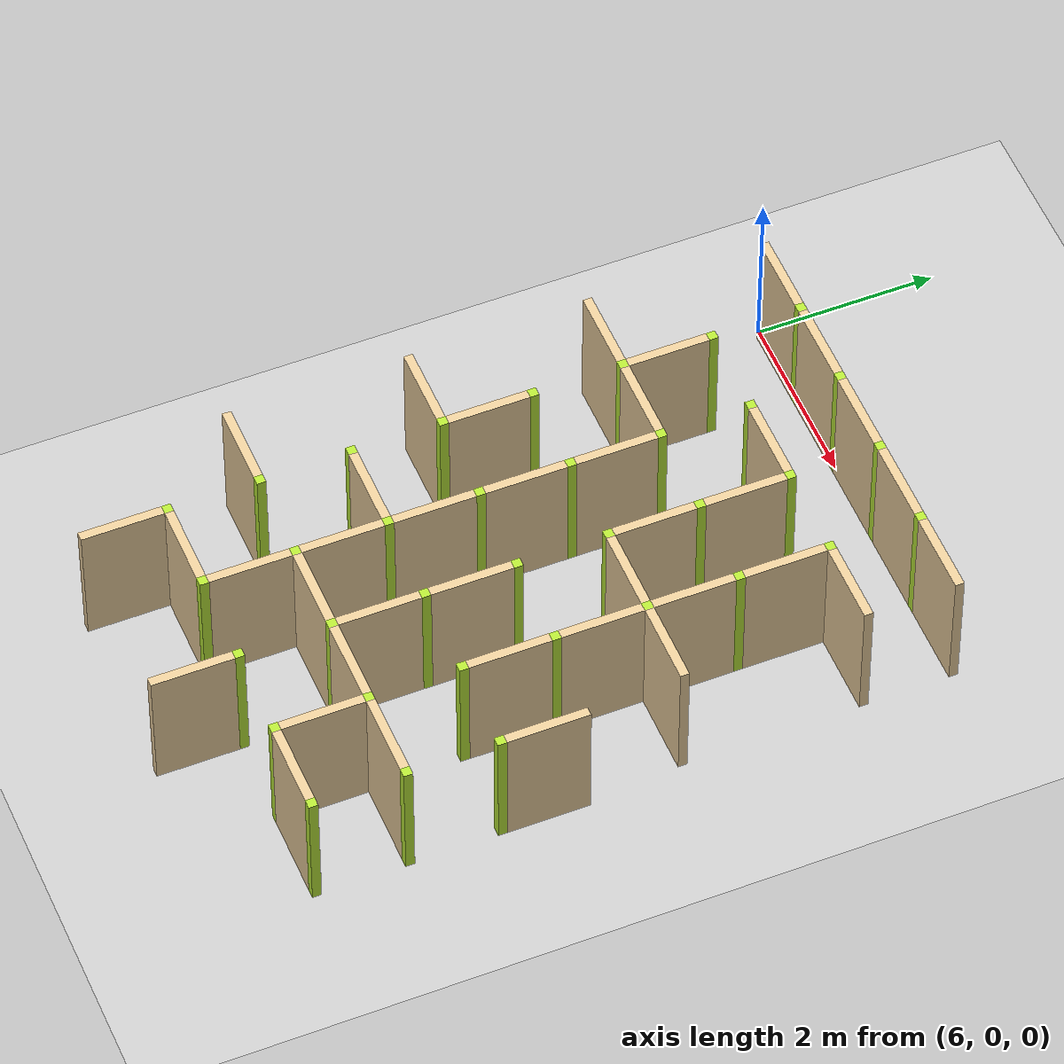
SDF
<sdf version="1.4">
 <world name="maze_world">
  <model name="ground">
   <static>true</static>
   <link name="ground_link">
    <collision name="collision1"><geometry><plane><normal>0 0 1</normal></plane></geometry></collision>
    <visual name="visual1"><geometry><plane><normal>0 0 1</normal><size>100 100</size></plane></geometry></visual>
   </link>
  </model>
  <model name="Untitled">
   <link name="Wall_6_0_h">
    <collision name="Wall_0_Collision">
     <geometry><box><size>0.9 0.1 1.5</size></box></geometry>
     <pose>0 0 0.75 0 -0 0</pose>
    </collision>
    <visual name="Wall_0_Visual">
     <pose>0 0 0.75 0 -0 0</pose>
     <geometry><box><size>0.9 0.1 1.5</size></box></geometry>
     <material>
      <script><uri>file://media/materials/scripts/gazebo.material</uri><name>Gazebo/Grey</name></script>
      <ambient>0.921569 0.807843 0.615686 1</ambient>
     </material>
     <meta><layer>0</layer></meta>
    </visual>
    <pose>6.5 0 0 0 -0 0</pose>
   </link>
   <link name="Wall_7_0_h">
    <collision name="Wall_0_Collision">
     <geometry><box><size>0.9 0.1 1.5</size></box></geometry>
     <pose>0 0 0.75 0 -0 0</pose>
    </collision>
    <visual name="Wall_0_Visual">
     <pose>0 0 0.75 0 -0 0</pose>
     <geometry><box><size>0.9 0.1 1.5</size></box></geometry>
     <material>
      <script><uri>file://media/materials/scripts/gazebo.material</uri><name>Gazebo/Grey</name></script>
      <ambient>0.921569 0.807843 0.615686 1</ambient>
     </material>
     <meta><layer>0</layer></meta>
    </visual>
    <pose>7.5 0 0 0 -0 0</pose>
   </link>
   <link name="Joint_7_0">
    <collision name="Wall_2_Collision">
     <geometry><box><size>0.1 0.1 1.5</size></box></geometry>
     <pose>0 0 0.75 0 -0 0</pose>
    </collision>
    <visual name="Wall_2_Visual">
     <pose>0 0 0.75 0 -0 0</pose>
     <geometry><box><size>0.1 0.1 1.5</size></box></geometry>
     <material>
      <script><uri>file://media/materials/scripts/gazebo.material</uri><name>Gazebo/Grey</name></script>
      <ambient>0.721569 0.907843 0.215686 1</ambient>
     </material>
     <meta><layer>0</layer></meta>
    </visual>
    <pose>7 0 0 0 -0 0</pose>
   </link>
   <link name="Wall_8_0_h">
    <collision name="Wall_0_Collision">
     <geometry><box><size>0.9 0.1 1.5</size></box></geometry>
     <pose>0 0 0.75 0 -0 0</pose>
    </collision>
    <visual name="Wall_0_Visual">
     <pose>0 0 0.75 0 -0 0</pose>
     <geometry><box><size>0.9 0.1 1.5</size></box></geometry>
     <material>
      <script><uri>file://media/materials/scripts/gazebo.material</uri><name>Gazebo/Grey</name></script>
      <ambient>0.921569 0.807843 0.615686 1</ambient>
     </material>
     <meta><layer>0</layer></meta>
    </visual>
    <pose>8.5 0 0 0 -0 0</pose>
   </link>
   <link name="Joint_8_0">
    <collision name="Wall_2_Collision">
     <geometry><box><size>0.1 0.1 1.5</size></box></geometry>
     <pose>0 0 0.75 0 -0 0</pose>
    </collision>
    <visual name="Wall_2_Visual">
     <pose>0 0 0.75 0 -0 0</pose>
     <geometry><box><size>0.1 0.1 1.5</size></box></geometry>
     <material>
      <script><uri>file://media/materials/scripts/gazebo.material</uri><name>Gazebo/Grey</name></script>
      <ambient>0.721569 0.907843 0.215686 1</ambient>
     </material>
     <meta><layer>0</layer></meta>
    </visual>
    <pose>8 0 0 0 -0 0</pose>
   </link>
   <link name="Wall_9_0_h">
    <collision name="Wall_0_Collision">
     <geometry><box><size>0.9 0.1 1.5</size></box></geometry>
     <pose>0 0 0.75 0 -0 0</pose>
    </collision>
    <visual name="Wall_0_Visual">
     <pose>0 0 0.75 0 -0 0</pose>
     <geometry><box><size>0.9 0.1 1.5</size></box></geometry>
     <material>
      <script><uri>file://media/materials/scripts/gazebo.material</uri><name>Gazebo/Grey</name></script>
      <ambient>0.921569 0.807843 0.615686 1</ambient>
     </material>
     <meta><layer>0</layer></meta>
    </visual>
    <pose>9.5 0 0 0 -0 0</pose>
   </link>
   <link name="Joint_9_0">
    <collision name="Wall_2_Collision">
     <geometry><box><size>0.1 0.1 1.5</size></box></geometry>
     <pose>0 0 0.75 0 -0 0</pose>
    </collision>
    <visual name="Wall_2_Visual">
     <pose>0 0 0.75 0 -0 0</pose>
     <geometry><box><size>0.1 0.1 1.5</size></box></geometry>
     <material>
      <script><uri>file://media/materials/scripts/gazebo.material</uri><name>Gazebo/Grey</name></script>
      <ambient>0.721569 0.907843 0.215686 1</ambient>
     </material>
     <meta><layer>0</layer></meta>
    </visual>
    <pose>9 0 0 0 -0 0</pose>
   </link>
   <link name="Wall_10_0_h">
    <collision name="Wall_0_Collision">
     <geometry><box><size>0.9 0.1 1.5</size></box></geometry>
     <pose>0 0 0.75 0 -0 0</pose>
    </collision>
    <visual name="Wall_0_Visual">
     <pose>0 0 0.75 0 -0 0</pose>
     <geometry><box><size>0.9 0.1 1.5</size></box></geometry>
     <material>
      <script><uri>file://media/materials/scripts/gazebo.material</uri><name>Gazebo/Grey</name></script>
      <ambient>0.921569 0.807843 0.615686 1</ambient>
     </material>
     <meta><layer>0</layer></meta>
    </visual>
    <pose>10.5 0 0 0 -0 0</pose>
   </link>
   <link name="Joint_10_0">
    <collision name="Wall_2_Collision">
     <geometry><box><size>0.1 0.1 1.5</size></box></geometry>
     <pose>0 0 0.75 0 -0 0</pose>
    </collision>
    <visual name="Wall_2_Visual">
     <pose>0 0 0.75 0 -0 0</pose>
     <geometry><box><size>0.1 0.1 1.5</size></box></geometry>
     <material>
      <script><uri>file://media/materials/scripts/gazebo.material</uri><name>Gazebo/Grey</name></script>
      <ambient>0.721569 0.907843 0.215686 1</ambient>
     </material>
     <meta><layer>0</layer></meta>
    </visual>
    <pose>10 0 0 0 -0 0</pose>
   </link>
   <link name="Wall_7_1_v">
    <collision name="Wall_0_Collision">
     <geometry><box><size>0.9 0.1 1.5</size></box></geometry>
     <pose>0 0 0.75 0 -0 0</pose>
    </collision>
    <visual name="Wall_0_Visual">
     <pose>0 0 0.75 0 -0 0</pose>
     <geometry><box><size>0.9 0.1 1.5</size></box></geometry>
     <material>
      <script><uri>file://media/materials/scripts/gazebo.material</uri><name>Gazebo/Grey</name></script>
      <ambient>0.921569 0.807843 0.615686 1</ambient>
     </material>
     <meta><layer>0</layer></meta>
    </visual>
    <pose>7 -1.5 0 0 -0 1.5708</pose>
   </link>
   <link name="Joint_7_-1">
    <collision name="Wall_2_Collision">
     <geometry><box><size>0.1 0.1 1.5</size></box></geometry>
     <pose>0 0 0.75 0 -0 0</pose>
    </collision>
    <visual name="Wall_2_Visual">
     <pose>0 0 0.75 0 -0 0</pose>
     <geometry><box><size>0.1 0.1 1.5</size></box></geometry>
     <material>
      <script><uri>file://media/materials/scripts/gazebo.material</uri><name>Gazebo/Grey</name></script>
      <ambient>0.721569 0.907843 0.215686 1</ambient>
     </material>
     <meta><layer>0</layer></meta>
    </visual>
    <pose>7 -1 0 0 -0 0</pose>
   </link>
   <link name="Wall_8_1_h">
    <collision name="Wall_0_Collision">
     <geometry><box><size>0.9 0.1 1.5</size></box></geometry>
     <pose>0 0 0.75 0 -0 0</pose>
    </collision>
    <visual name="Wall_0_Visual">
     <pose>0 0 0.75 0 -0 0</pose>
     <geometry><box><size>0.9 0.1 1.5</size></box></geometry>
     <material>
      <script><uri>file://media/materials/scripts/gazebo.material</uri><name>Gazebo/Grey</name></script>
      <ambient>0.921569 0.807843 0.615686 1</ambient>
     </material>
     <meta><layer>0</layer></meta>
    </visual>
    <pose>8.5 -1 0 0 -0 0</pose>
   </link>
   <link name="Joint_8_-1">
    <collision name="Wall_2_Collision">
     <geometry><box><size>0.1 0.1 1.5</size></box></geometry>
     <pose>0 0 0.75 0 -0 0</pose>
    </collision>
    <visual name="Wall_2_Visual">
     <pose>0 0 0.75 0 -0 0</pose>
     <geometry><box><size>0.1 0.1 1.5</size></box></geometry>
     <material>
      <script><uri>file://media/materials/scripts/gazebo.material</uri><name>Gazebo/Grey</name></script>
      <ambient>0.721569 0.907843 0.215686 1</ambient>
     </material>
     <meta><layer>0</layer></meta>
    </visual>
    <pose>8 -1 0 0 -0 0</pose>
   </link>
   <link name="Wall_9_1_v">
    <collision name="Wall_0_Collision">
     <geometry><box><size>0.9 0.1 1.5</size></box></geometry>
     <pose>0 0 0.75 0 -0 0</pose>
    </collision>
    <visual name="Wall_0_Visual">
     <pose>0 0 0.75 0 -0 0</pose>
     <geometry><box><size>0.9 0.1 1.5</size></box></geometry>
     <material>
      <script><uri>file://media/materials/scripts/gazebo.material</uri><name>Gazebo/Grey</name></script>
      <ambient>0.921569 0.807843 0.615686 1</ambient>
     </material>
     <meta><layer>0</layer></meta>
    </visual>
    <pose>9 -1.5 0 0 -0 1.5708</pose>
   </link>
   <link name="Joint_9_-1">
    <collision name="Wall_2_Collision">
     <geometry><box><size>0.1 0.1 1.5</size></box></geometry>
     <pose>0 0 0.75 0 -0 0</pose>
    </collision>
    <visual name="Wall_2_Visual">
     <pose>0 0 0.75 0 -0 0</pose>
     <geometry><box><size>0.1 0.1 1.5</size></box></geometry>
     <material>
      <script><uri>file://media/materials/scripts/gazebo.material</uri><name>Gazebo/Grey</name></script>
      <ambient>0.721569 0.907843 0.215686 1</ambient>
     </material>
     <meta><layer>0</layer></meta>
    </visual>
    <pose>9 -1 0 0 -0 0</pose>
   </link>
   <link name="Wall_10_1_h">
    <collision name="Wall_0_Collision">
     <geometry><box><size>0.9 0.1 1.5</size></box></geometry>
     <pose>0 0 0.75 0 -0 0</pose>
    </collision>
    <visual name="Wall_0_Visual">
     <pose>0 0 0.75 0 -0 0</pose>
     <geometry><box><size>0.9 0.1 1.5</size></box></geometry>
     <material>
      <script><uri>file://media/materials/scripts/gazebo.material</uri><name>Gazebo/Grey</name></script>
      <ambient>0.921569 0.807843 0.615686 1</ambient>
     </material>
     <meta><layer>0</layer></meta>
    </visual>
    <pose>10.5 -1 0 0 -0 0</pose>
   </link>
   <link name="Wall_10_1_v">
    <collision name="Wall_0_Collision">
     <geometry><box><size>0.9 0.1 1.5</size></box></geometry>
     <pose>0 0 0.75 0 -0 0</pose>
    </collision>
    <visual name="Wall_0_Visual">
     <pose>0 0 0.75 0 -0 0</pose>
     <geometry><box><size>0.9 0.1 1.5</size></box></geometry>
     <material>
      <script><uri>file://media/materials/scripts/gazebo.material</uri><name>Gazebo/Grey</name></script>
      <ambient>0.921569 0.807843 0.615686 1</ambient>
     </material>
     <meta><layer>0</layer></meta>
    </visual>
    <pose>10 -1.5 0 0 -0 1.5708</pose>
   </link>
   <link name="Joint_10_-1">
    <collision name="Wall_2_Collision">
     <geometry><box><size>0.1 0.1 1.5</size></box></geometry>
     <pose>0 0 0.75 0 -0 0</pose>
    </collision>
    <visual name="Wall_2_Visual">
     <pose>0 0 0.75 0 -0 0</pose>
     <geometry><box><size>0.1 0.1 1.5</size></box></geometry>
     <material>
      <script><uri>file://media/materials/scripts/gazebo.material</uri><name>Gazebo/Grey</name></script>
      <ambient>0.721569 0.907843 0.215686 1</ambient>
     </material>
     <meta><layer>0</layer></meta>
    </visual>
    <pose>10 -1 0 0 -0 0</pose>
   </link>
   <link name="Wall_6_2_h">
    <collision name="Wall_0_Collision">
     <geometry><box><size>0.9 0.1 1.5</size></box></geometry>
     <pose>0 0 0.75 0 -0 0</pose>
    </collision>
    <visual name="Wall_0_Visual">
     <pose>0 0 0.75 0 -0 0</pose>
     <geometry><box><size>0.9 0.1 1.5</size></box></geometry>
     <material>
      <script><uri>file://media/materials/scripts/gazebo.material</uri><name>Gazebo/Grey</name></script>
      <ambient>0.921569 0.807843 0.615686 1</ambient>
     </material>
     <meta><layer>0</layer></meta>
    </visual>
    <pose>6.5 -2 0 0 -0 0</pose>
   </link>
   <link name="Wall_7_2_h">
    <collision name="Wall_0_Collision">
     <geometry><box><size>0.9 0.1 1.5</size></box></geometry>
     <pose>0 0 0.75 0 -0 0</pose>
    </collision>
    <visual name="Wall_0_Visual">
     <pose>0 0 0.75 0 -0 0</pose>
     <geometry><box><size>0.9 0.1 1.5</size></box></geometry>
     <material>
      <script><uri>file://media/materials/scripts/gazebo.material</uri><name>Gazebo/Grey</name></script>
      <ambient>0.921569 0.807843 0.615686 1</ambient>
     </material>
     <meta><layer>0</layer></meta>
    </visual>
    <pose>7.5 -2 0 0 -0 0</pose>
   </link>
   <link name="Joint_7_-2">
    <collision name="Wall_2_Collision">
     <geometry><box><size>0.1 0.1 1.5</size></box></geometry>
     <pose>0 0 0.75 0 -0 0</pose>
    </collision>
    <visual name="Wall_2_Visual">
     <pose>0 0 0.75 0 -0 0</pose>
     <geometry><box><size>0.1 0.1 1.5</size></box></geometry>
     <material>
      <script><uri>file://media/materials/scripts/gazebo.material</uri><name>Gazebo/Grey</name></script>
      <ambient>0.721569 0.907843 0.215686 1</ambient>
     </material>
     <meta><layer>0</layer></meta>
    </visual>
    <pose>7 -2 0 0 -0 0</pose>
   </link>
   <link name="Wall_8_2_v">
    <collision name="Wall_0_Collision">
     <geometry><box><size>0.9 0.1 1.5</size></box></geometry>
     <pose>0 0 0.75 0 -0 0</pose>
    </collision>
    <visual name="Wall_0_Visual">
     <pose>0 0 0.75 0 -0 0</pose>
     <geometry><box><size>0.9 0.1 1.5</size></box></geometry>
     <material>
      <script><uri>file://media/materials/scripts/gazebo.material</uri><name>Gazebo/Grey</name></script>
      <ambient>0.921569 0.807843 0.615686 1</ambient>
     </material>
     <meta><layer>0</layer></meta>
    </visual>
    <pose>8 -2.5 0 0 -0 1.5708</pose>
   </link>
   <link name="Joint_8_-2">
    <collision name="Wall_2_Collision">
     <geometry><box><size>0.1 0.1 1.5</size></box></geometry>
     <pose>0 0 0.75 0 -0 0</pose>
    </collision>
    <visual name="Wall_2_Visual">
     <pose>0 0 0.75 0 -0 0</pose>
     <geometry><box><size>0.1 0.1 1.5</size></box></geometry>
     <material>
      <script><uri>file://media/materials/scripts/gazebo.material</uri><name>Gazebo/Grey</name></script>
      <ambient>0.721569 0.907843 0.215686 1</ambient>
     </material>
     <meta><layer>0</layer></meta>
    </visual>
    <pose>8 -2 0 0 -0 0</pose>
   </link>
   <link name="Wall_9_2_v">
    <collision name="Wall_0_Collision">
     <geometry><box><size>0.9 0.1 1.5</size></box></geometry>
     <pose>0 0 0.75 0 -0 0</pose>
    </collision>
    <visual name="Wall_0_Visual">
     <pose>0 0 0.75 0 -0 0</pose>
     <geometry><box><size>0.9 0.1 1.5</size></box></geometry>
     <material>
      <script><uri>file://media/materials/scripts/gazebo.material</uri><name>Gazebo/Grey</name></script>
      <ambient>0.921569 0.807843 0.615686 1</ambient>
     </material>
     <meta><layer>0</layer></meta>
    </visual>
    <pose>9 -2.5 0 0 -0 1.5708</pose>
   </link>
   <link name="Joint_9_-2">
    <collision name="Wall_2_Collision">
     <geometry><box><size>0.1 0.1 1.5</size></box></geometry>
     <pose>0 0 0.75 0 -0 0</pose>
    </collision>
    <visual name="Wall_2_Visual">
     <pose>0 0 0.75 0 -0 0</pose>
     <geometry><box><size>0.1 0.1 1.5</size></box></geometry>
     <material>
      <script><uri>file://media/materials/scripts/gazebo.material</uri><name>Gazebo/Grey</name></script>
      <ambient>0.721569 0.907843 0.215686 1</ambient>
     </material>
     <meta><layer>0</layer></meta>
    </visual>
    <pose>9 -2 0 0 -0 0</pose>
   </link>
   <link name="Wall_10_2_v">
    <collision name="Wall_0_Collision">
     <geometry><box><size>0.9 0.1 1.5</size></box></geometry>
     <pose>0 0 0.75 0 -0 0</pose>
    </collision>
    <visual name="Wall_0_Visual">
     <pose>0 0 0.75 0 -0 0</pose>
     <geometry><box><size>0.9 0.1 1.5</size></box></geometry>
     <material>
      <script><uri>file://media/materials/scripts/gazebo.material</uri><name>Gazebo/Grey</name></script>
      <ambient>0.921569 0.807843 0.615686 1</ambient>
     </material>
     <meta><layer>0</layer></meta>
    </visual>
    <pose>10 -2.5 0 0 -0 1.5708</pose>
   </link>
   <link name="Joint_10_-2">
    <collision name="Wall_2_Collision">
     <geometry><box><size>0.1 0.1 1.5</size></box></geometry>
     <pose>0 0 0.75 0 -0 0</pose>
    </collision>
    <visual name="Wall_2_Visual">
     <pose>0 0 0.75 0 -0 0</pose>
     <geometry><box><size>0.1 0.1 1.5</size></box></geometry>
     <material>
      <script><uri>file://media/materials/scripts/gazebo.material</uri><name>Gazebo/Grey</name></script>
      <ambient>0.721569 0.907843 0.215686 1</ambient>
     </material>
     <meta><layer>0</layer></meta>
    </visual>
    <pose>10 -2 0 0 -0 0</pose>
   </link>
   <link name="Wall_7_3_v">
    <collision name="Wall_0_Collision">
     <geometry><box><size>0.9 0.1 1.5</size></box></geometry>
     <pose>0 0 0.75 0 -0 0</pose>
    </collision>
    <visual name="Wall_0_Visual">
     <pose>0 0 0.75 0 -0 0</pose>
     <geometry><box><size>0.9 0.1 1.5</size></box></geometry>
     <material>
      <script><uri>file://media/materials/scripts/gazebo.material</uri><name>Gazebo/Grey</name></script>
      <ambient>0.921569 0.807843 0.615686 1</ambient>
     </material>
     <meta><layer>0</layer></meta>
    </visual>
    <pose>7 -3.5 0 0 -0 1.5708</pose>
   </link>
   <link name="Joint_7_-3">
    <collision name="Wall_2_Collision">
     <geometry><box><size>0.1 0.1 1.5</size></box></geometry>
     <pose>0 0 0.75 0 -0 0</pose>
    </collision>
    <visual name="Wall_2_Visual">
     <pose>0 0 0.75 0 -0 0</pose>
     <geometry><box><size>0.1 0.1 1.5</size></box></geometry>
     <material>
      <script><uri>file://media/materials/scripts/gazebo.material</uri><name>Gazebo/Grey</name></script>
      <ambient>0.721569 0.907843 0.215686 1</ambient>
     </material>
     <meta><layer>0</layer></meta>
    </visual>
    <pose>7 -3 0 0 -0 0</pose>
   </link>
   <link name="Wall_8_3_v">
    <collision name="Wall_0_Collision">
     <geometry><box><size>0.9 0.1 1.5</size></box></geometry>
     <pose>0 0 0.75 0 -0 0</pose>
    </collision>
    <visual name="Wall_0_Visual">
     <pose>0 0 0.75 0 -0 0</pose>
     <geometry><box><size>0.9 0.1 1.5</size></box></geometry>
     <material>
      <script><uri>file://media/materials/scripts/gazebo.material</uri><name>Gazebo/Grey</name></script>
      <ambient>0.921569 0.807843 0.615686 1</ambient>
     </material>
     <meta><layer>0</layer></meta>
    </visual>
    <pose>8 -3.5 0 0 -0 1.5708</pose>
   </link>
   <link name="Joint_8_-3">
    <collision name="Wall_2_Collision">
     <geometry><box><size>0.1 0.1 1.5</size></box></geometry>
     <pose>0 0 0.75 0 -0 0</pose>
    </collision>
    <visual name="Wall_2_Visual">
     <pose>0 0 0.75 0 -0 0</pose>
     <geometry><box><size>0.1 0.1 1.5</size></box></geometry>
     <material>
      <script><uri>file://media/materials/scripts/gazebo.material</uri><name>Gazebo/Grey</name></script>
      <ambient>0.721569 0.907843 0.215686 1</ambient>
     </material>
     <meta><layer>0</layer></meta>
    </visual>
    <pose>8 -3 0 0 -0 0</pose>
   </link>
   <link name="Wall_9_3_h">
    <collision name="Wall_0_Collision">
     <geometry><box><size>0.9 0.1 1.5</size></box></geometry>
     <pose>0 0 0.75 0 -0 0</pose>
    </collision>
    <visual name="Wall_0_Visual">
     <pose>0 0 0.75 0 -0 0</pose>
     <geometry><box><size>0.9 0.1 1.5</size></box></geometry>
     <material>
      <script><uri>file://media/materials/scripts/gazebo.material</uri><name>Gazebo/Grey</name></script>
      <ambient>0.921569 0.807843 0.615686 1</ambient>
     </material>
     <meta><layer>0</layer></meta>
    </visual>
    <pose>9.5 -3 0 0 -0 0</pose>
   </link>
   <link name="Joint_9_-3">
    <collision name="Wall_2_Collision">
     <geometry><box><size>0.1 0.1 1.5</size></box></geometry>
     <pose>0 0 0.75 0 -0 0</pose>
    </collision>
    <visual name="Wall_2_Visual">
     <pose>0 0 0.75 0 -0 0</pose>
     <geometry><box><size>0.1 0.1 1.5</size></box></geometry>
     <material>
      <script><uri>file://media/materials/scripts/gazebo.material</uri><name>Gazebo/Grey</name></script>
      <ambient>0.721569 0.907843 0.215686 1</ambient>
     </material>
     <meta><layer>0</layer></meta>
    </visual>
    <pose>9 -3 0 0 -0 0</pose>
   </link>
   <link name="Wall_10_3_h">
    <collision name="Wall_0_Collision">
     <geometry><box><size>0.9 0.1 1.5</size></box></geometry>
     <pose>0 0 0.75 0 -0 0</pose>
    </collision>
    <visual name="Wall_0_Visual">
     <pose>0 0 0.75 0 -0 0</pose>
     <geometry><box><size>0.9 0.1 1.5</size></box></geometry>
     <material>
      <script><uri>file://media/materials/scripts/gazebo.material</uri><name>Gazebo/Grey</name></script>
      <ambient>0.921569 0.807843 0.615686 1</ambient>
     </material>
     <meta><layer>0</layer></meta>
    </visual>
    <pose>10.5 -3 0 0 -0 0</pose>
   </link>
   <link name="Wall_10_3_v">
    <collision name="Wall_0_Collision">
     <geometry><box><size>0.9 0.1 1.5</size></box></geometry>
     <pose>0 0 0.75 0 -0 0</pose>
    </collision>
    <visual name="Wall_0_Visual">
     <pose>0 0 0.75 0 -0 0</pose>
     <geometry><box><size>0.9 0.1 1.5</size></box></geometry>
     <material>
      <script><uri>file://media/materials/scripts/gazebo.material</uri><name>Gazebo/Grey</name></script>
      <ambient>0.921569 0.807843 0.615686 1</ambient>
     </material>
     <meta><layer>0</layer></meta>
    </visual>
    <pose>10 -3.5 0 0 -0 1.5708</pose>
   </link>
   <link name="Joint_10_-3">
    <collision name="Wall_2_Collision">
     <geometry><box><size>0.1 0.1 1.5</size></box></geometry>
     <pose>0 0 0.75 0 -0 0</pose>
    </collision>
    <visual name="Wall_2_Visual">
     <pose>0 0 0.75 0 -0 0</pose>
     <geometry><box><size>0.1 0.1 1.5</size></box></geometry>
     <material>
      <script><uri>file://media/materials/scripts/gazebo.material</uri><name>Gazebo/Grey</name></script>
      <ambient>0.721569 0.907843 0.215686 1</ambient>
     </material>
     <meta><layer>0</layer></meta>
    </visual>
    <pose>10 -3 0 0 -0 0</pose>
   </link>
   <link name="Wall_6_4_h">
    <collision name="Wall_0_Collision">
     <geometry><box><size>0.9 0.1 1.5</size></box></geometry>
     <pose>0 0 0.75 0 -0 0</pose>
    </collision>
    <visual name="Wall_0_Visual">
     <pose>0 0 0.75 0 -0 0</pose>
     <geometry><box><size>0.9 0.1 1.5</size></box></geometry>
     <material>
      <script><uri>file://media/materials/scripts/gazebo.material</uri><name>Gazebo/Grey</name></script>
      <ambient>0.921569 0.807843 0.615686 1</ambient>
     </material>
     <meta><layer>0</layer></meta>
    </visual>
    <pose>6.5 -4 0 0 -0 0</pose>
   </link>
   <link name="Joint_7_-4">
    <collision name="Wall_2_Collision">
     <geometry><box><size>0.1 0.1 1.5</size></box></geometry>
     <pose>0 0 0.75 0 -0 0</pose>
    </collision>
    <visual name="Wall_2_Visual">
     <pose>0 0 0.75 0 -0 0</pose>
     <geometry><box><size>0.1 0.1 1.5</size></box></geometry>
     <material>
      <script><uri>file://media/materials/scripts/gazebo.material</uri><name>Gazebo/Grey</name></script>
      <ambient>0.721569 0.907843 0.215686 1</ambient>
     </material>
     <meta><layer>0</layer></meta>
    </visual>
    <pose>7 -4 0 0 -0 0</pose>
   </link>
   <link name="Wall_8_4_v">
    <collision name="Wall_0_Collision">
     <geometry><box><size>0.9 0.1 1.5</size></box></geometry>
     <pose>0 0 0.75 0 -0 0</pose>
    </collision>
    <visual name="Wall_0_Visual">
     <pose>0 0 0.75 0 -0 0</pose>
     <geometry><box><size>0.9 0.1 1.5</size></box></geometry>
     <material>
      <script><uri>file://media/materials/scripts/gazebo.material</uri><name>Gazebo/Grey</name></script>
      <ambient>0.921569 0.807843 0.615686 1</ambient>
     </material>
     <meta><layer>0</layer></meta>
    </visual>
    <pose>8 -4.5 0 0 -0 1.5708</pose>
   </link>
   <link name="Joint_8_-4">
    <collision name="Wall_2_Collision">
     <geometry><box><size>0.1 0.1 1.5</size></box></geometry>
     <pose>0 0 0.75 0 -0 0</pose>
    </collision>
    <visual name="Wall_2_Visual">
     <pose>0 0 0.75 0 -0 0</pose>
     <geometry><box><size>0.1 0.1 1.5</size></box></geometry>
     <material>
      <script><uri>file://media/materials/scripts/gazebo.material</uri><name>Gazebo/Grey</name></script>
      <ambient>0.721569 0.907843 0.215686 1</ambient>
     </material>
     <meta><layer>0</layer></meta>
    </visual>
    <pose>8 -4 0 0 -0 0</pose>
   </link>
   <link name="Wall_9_4_v">
    <collision name="Wall_0_Collision">
     <geometry><box><size>0.9 0.1 1.5</size></box></geometry>
     <pose>0 0 0.75 0 -0 0</pose>
    </collision>
    <visual name="Wall_0_Visual">
     <pose>0 0 0.75 0 -0 0</pose>
     <geometry><box><size>0.9 0.1 1.5</size></box></geometry>
     <material>
      <script><uri>file://media/materials/scripts/gazebo.material</uri><name>Gazebo/Grey</name></script>
      <ambient>0.921569 0.807843 0.615686 1</ambient>
     </material>
     <meta><layer>0</layer></meta>
    </visual>
    <pose>9 -4.5 0 0 -0 1.5708</pose>
   </link>
   <link name="Joint_9_-4">
    <collision name="Wall_2_Collision">
     <geometry><box><size>0.1 0.1 1.5</size></box></geometry>
     <pose>0 0 0.75 0 -0 0</pose>
    </collision>
    <visual name="Wall_2_Visual">
     <pose>0 0 0.75 0 -0 0</pose>
     <geometry><box><size>0.1 0.1 1.5</size></box></geometry>
     <material>
      <script><uri>file://media/materials/scripts/gazebo.material</uri><name>Gazebo/Grey</name></script>
      <ambient>0.721569 0.907843 0.215686 1</ambient>
     </material>
     <meta><layer>0</layer></meta>
    </visual>
    <pose>9 -4 0 0 -0 0</pose>
   </link>
   <link name="Wall_10_4_v">
    <collision name="Wall_0_Collision">
     <geometry><box><size>0.9 0.1 1.5</size></box></geometry>
     <pose>0 0 0.75 0 -0 0</pose>
    </collision>
    <visual name="Wall_0_Visual">
     <pose>0 0 0.75 0 -0 0</pose>
     <geometry><box><size>0.9 0.1 1.5</size></box></geometry>
     <material>
      <script><uri>file://media/materials/scripts/gazebo.material</uri><name>Gazebo/Grey</name></script>
      <ambient>0.921569 0.807843 0.615686 1</ambient>
     </material>
     <meta><layer>0</layer></meta>
    </visual>
    <pose>10 -4.5 0 0 -0 1.5708</pose>
   </link>
   <link name="Joint_10_-4">
    <collision name="Wall_2_Collision">
     <geometry><box><size>0.1 0.1 1.5</size></box></geometry>
     <pose>0 0 0.75 0 -0 0</pose>
    </collision>
    <visual name="Wall_2_Visual">
     <pose>0 0 0.75 0 -0 0</pose>
     <geometry><box><size>0.1 0.1 1.5</size></box></geometry>
     <material>
      <script><uri>file://media/materials/scripts/gazebo.material</uri><name>Gazebo/Grey</name></script>
      <ambient>0.721569 0.907843 0.215686 1</ambient>
     </material>
     <meta><layer>0</layer></meta>
    </visual>
    <pose>10 -4 0 0 -0 0</pose>
   </link>
   <link name="Wall_11_4_v">
    <collision name="Wall_0_Collision">
     <geometry><box><size>0.9 0.1 1.5</size></box></geometry>
     <pose>0 0 0.75 0 -0 0</pose>
    </collision>
    <visual name="Wall_0_Visual">
     <pose>0 0 0.75 0 -0 0</pose>
     <geometry><box><size>0.9 0.1 1.5</size></box></geometry>
     <material>
      <script><uri>file://media/materials/scripts/gazebo.material</uri><name>Gazebo/Grey</name></script>
      <ambient>0.921569 0.807843 0.615686 1</ambient>
     </material>
     <meta><layer>0</layer></meta>
    </visual>
    <pose>11 -4.5 0 0 -0 1.5708</pose>
   </link>
   <link name="Wall_7_5_h">
    <collision name="Wall_0_Collision">
     <geometry><box><size>0.9 0.1 1.5</size></box></geometry>
     <pose>0 0 0.75 0 -0 0</pose>
    </collision>
    <visual name="Wall_0_Visual">
     <pose>0 0 0.75 0 -0 0</pose>
     <geometry><box><size>0.9 0.1 1.5</size></box></geometry>
     <material>
      <script><uri>file://media/materials/scripts/gazebo.material</uri><name>Gazebo/Grey</name></script>
      <ambient>0.921569 0.807843 0.615686 1</ambient>
     </material>
     <meta><layer>0</layer></meta>
    </visual>
    <pose>7.5 -5 0 0 -0 0</pose>
   </link>
   <link name="Joint_7_-5">
    <collision name="Wall_2_Collision">
     <geometry><box><size>0.1 0.1 1.5</size></box></geometry>
     <pose>0 0 0.75 0 -0 0</pose>
    </collision>
    <visual name="Wall_2_Visual">
     <pose>0 0 0.75 0 -0 0</pose>
     <geometry><box><size>0.1 0.1 1.5</size></box></geometry>
     <material>
      <script><uri>file://media/materials/scripts/gazebo.material</uri><name>Gazebo/Grey</name></script>
      <ambient>0.721569 0.907843 0.215686 1</ambient>
     </material>
     <meta><layer>0</layer></meta>
    </visual>
    <pose>7 -5 0 0 -0 0</pose>
   </link>
   <link name="Wall_8_5_v">
    <collision name="Wall_0_Collision">
     <geometry><box><size>0.9 0.1 1.5</size></box></geometry>
     <pose>0 0 0.75 0 -0 0</pose>
    </collision>
    <visual name="Wall_0_Visual">
     <pose>0 0 0.75 0 -0 0</pose>
     <geometry><box><size>0.9 0.1 1.5</size></box></geometry>
     <material>
      <script><uri>file://media/materials/scripts/gazebo.material</uri><name>Gazebo/Grey</name></script>
      <ambient>0.921569 0.807843 0.615686 1</ambient>
     </material>
     <meta><layer>0</layer></meta>
    </visual>
    <pose>8 -5.5 0 0 -0 1.5708</pose>
   </link>
   <link name="Joint_8_-5">
    <collision name="Wall_2_Collision">
     <geometry><box><size>0.1 0.1 1.5</size></box></geometry>
     <pose>0 0 0.75 0 -0 0</pose>
    </collision>
    <visual name="Wall_2_Visual">
     <pose>0 0 0.75 0 -0 0</pose>
     <geometry><box><size>0.1 0.1 1.5</size></box></geometry>
     <material>
      <script><uri>file://media/materials/scripts/gazebo.material</uri><name>Gazebo/Grey</name></script>
      <ambient>0.721569 0.907843 0.215686 1</ambient>
     </material>
     <meta><layer>0</layer></meta>
    </visual>
    <pose>8 -5 0 0 -0 0</pose>
   </link>
   <link name="Wall_9_5_v">
    <collision name="Wall_0_Collision">
     <geometry><box><size>0.9 0.1 1.5</size></box></geometry>
     <pose>0 0 0.75 0 -0 0</pose>
    </collision>
    <visual name="Wall_0_Visual">
     <pose>0 0 0.75 0 -0 0</pose>
     <geometry><box><size>0.9 0.1 1.5</size></box></geometry>
     <material>
      <script><uri>file://media/materials/scripts/gazebo.material</uri><name>Gazebo/Grey</name></script>
      <ambient>0.921569 0.807843 0.615686 1</ambient>
     </material>
     <meta><layer>0</layer></meta>
    </visual>
    <pose>9 -5.5 0 0 -0 1.5708</pose>
   </link>
   <link name="Joint_9_-5">
    <collision name="Wall_2_Collision">
     <geometry><box><size>0.1 0.1 1.5</size></box></geometry>
     <pose>0 0 0.75 0 -0 0</pose>
    </collision>
    <visual name="Wall_2_Visual">
     <pose>0 0 0.75 0 -0 0</pose>
     <geometry><box><size>0.1 0.1 1.5</size></box></geometry>
     <material>
      <script><uri>file://media/materials/scripts/gazebo.material</uri><name>Gazebo/Grey</name></script>
      <ambient>0.721569 0.907843 0.215686 1</ambient>
     </material>
     <meta><layer>0</layer></meta>
    </visual>
    <pose>9 -5 0 0 -0 0</pose>
   </link>
   <link name="Joint_10_-5">
    <collision name="Wall_2_Collision">
     <geometry><box><size>0.1 0.1 1.5</size></box></geometry>
     <pose>0 0 0.75 0 -0 0</pose>
    </collision>
    <visual name="Wall_2_Visual">
     <pose>0 0 0.75 0 -0 0</pose>
     <geometry><box><size>0.1 0.1 1.5</size></box></geometry>
     <material>
      <script><uri>file://media/materials/scripts/gazebo.material</uri><name>Gazebo/Grey</name></script>
      <ambient>0.721569 0.907843 0.215686 1</ambient>
     </material>
     <meta><layer>0</layer></meta>
    </visual>
    <pose>10 -5 0 0 -0 0</pose>
   </link>
   <link name="Joint_11_-5">
    <collision name="Wall_2_Collision">
     <geometry><box><size>0.1 0.1 1.5</size></box></geometry>
     <pose>0 0 0.75 0 -0 0</pose>
    </collision>
    <visual name="Wall_2_Visual">
     <pose>0 0 0.75 0 -0 0</pose>
     <geometry><box><size>0.1 0.1 1.5</size></box></geometry>
     <material>
      <script><uri>file://media/materials/scripts/gazebo.material</uri><name>Gazebo/Grey</name></script>
      <ambient>0.721569 0.907843 0.215686 1</ambient>
     </material>
     <meta><layer>0</layer></meta>
    </visual>
    <pose>11 -5 0 0 -0 0</pose>
   </link>
   <link name="Wall_6_6_h">
    <collision name="Wall_0_Collision">
     <geometry><box><size>0.9 0.1 1.5</size></box></geometry>
     <pose>0 0 0.75 0 -0 0</pose>
    </collision>
    <visual name="Wall_0_Visual">
     <pose>0 0 0.75 0 -0 0</pose>
     <geometry><box><size>0.9 0.1 1.5</size></box></geometry>
     <material>
      <script><uri>file://media/materials/scripts/gazebo.material</uri><name>Gazebo/Grey</name></script>
      <ambient>0.921569 0.807843 0.615686 1</ambient>
     </material>
     <meta><layer>0</layer></meta>
    </visual>
    <pose>6.5 -6 0 0 -0 0</pose>
   </link>
   <link name="Joint_7_-6">
    <collision name="Wall_2_Collision">
     <geometry><box><size>0.1 0.1 1.5</size></box></geometry>
     <pose>0 0 0.75 0 -0 0</pose>
    </collision>
    <visual name="Wall_2_Visual">
     <pose>0 0 0.75 0 -0 0</pose>
     <geometry><box><size>0.1 0.1 1.5</size></box></geometry>
     <material>
      <script><uri>file://media/materials/scripts/gazebo.material</uri><name>Gazebo/Grey</name></script>
      <ambient>0.721569 0.907843 0.215686 1</ambient>
     </material>
     <meta><layer>0</layer></meta>
    </visual>
    <pose>7 -6 0 0 -0 0</pose>
   </link>
   <link name="Wall_8_6_h">
    <collision name="Wall_0_Collision">
     <geometry><box><size>0.9 0.1 1.5</size></box></geometry>
     <pose>0 0 0.75 0 -0 0</pose>
    </collision>
    <visual name="Wall_0_Visual">
     <pose>0 0 0.75 0 -0 0</pose>
     <geometry><box><size>0.9 0.1 1.5</size></box></geometry>
     <material>
      <script><uri>file://media/materials/scripts/gazebo.material</uri><name>Gazebo/Grey</name></script>
      <ambient>0.921569 0.807843 0.615686 1</ambient>
     </material>
     <meta><layer>0</layer></meta>
    </visual>
    <pose>8.5 -6 0 0 -0 0</pose>
   </link>
   <link name="Wall_8_6_v">
    <collision name="Wall_0_Collision">
     <geometry><box><size>0.9 0.1 1.5</size></box></geometry>
     <pose>0 0 0.75 0 -0 0</pose>
    </collision>
    <visual name="Wall_0_Visual">
     <pose>0 0 0.75 0 -0 0</pose>
     <geometry><box><size>0.9 0.1 1.5</size></box></geometry>
     <material>
      <script><uri>file://media/materials/scripts/gazebo.material</uri><name>Gazebo/Grey</name></script>
      <ambient>0.921569 0.807843 0.615686 1</ambient>
     </material>
     <meta><layer>0</layer></meta>
    </visual>
    <pose>8 -6.5 0 0 -0 1.5708</pose>
   </link>
   <link name="Joint_8_-6">
    <collision name="Wall_2_Collision">
     <geometry><box><size>0.1 0.1 1.5</size></box></geometry>
     <pose>0 0 0.75 0 -0 0</pose>
    </collision>
    <visual name="Wall_2_Visual">
     <pose>0 0 0.75 0 -0 0</pose>
     <geometry><box><size>0.1 0.1 1.5</size></box></geometry>
     <material>
      <script><uri>file://media/materials/scripts/gazebo.material</uri><name>Gazebo/Grey</name></script>
      <ambient>0.721569 0.907843 0.215686 1</ambient>
     </material>
     <meta><layer>0</layer></meta>
    </visual>
    <pose>8 -6 0 0 -0 0</pose>
   </link>
   <link name="Wall_9_6_h">
    <collision name="Wall_0_Collision">
     <geometry><box><size>0.9 0.1 1.5</size></box></geometry>
     <pose>0 0 0.75 0 -0 0</pose>
    </collision>
    <visual name="Wall_0_Visual">
     <pose>0 0 0.75 0 -0 0</pose>
     <geometry><box><size>0.9 0.1 1.5</size></box></geometry>
     <material>
      <script><uri>file://media/materials/scripts/gazebo.material</uri><name>Gazebo/Grey</name></script>
      <ambient>0.921569 0.807843 0.615686 1</ambient>
     </material>
     <meta><layer>0</layer></meta>
    </visual>
    <pose>9.5 -6 0 0 -0 0</pose>
   </link>
   <link name="Joint_9_-6">
    <collision name="Wall_2_Collision">
     <geometry><box><size>0.1 0.1 1.5</size></box></geometry>
     <pose>0 0 0.75 0 -0 0</pose>
    </collision>
    <visual name="Wall_2_Visual">
     <pose>0 0 0.75 0 -0 0</pose>
     <geometry><box><size>0.1 0.1 1.5</size></box></geometry>
     <material>
      <script><uri>file://media/materials/scripts/gazebo.material</uri><name>Gazebo/Grey</name></script>
      <ambient>0.721569 0.907843 0.215686 1</ambient>
     </material>
     <meta><layer>0</layer></meta>
    </visual>
    <pose>9 -6 0 0 -0 0</pose>
   </link>
   <link name="Wall_10_6_h">
    <collision name="Wall_0_Collision">
     <geometry><box><size>0.9 0.1 1.5</size></box></geometry>
     <pose>0 0 0.75 0 -0 0</pose>
    </collision>
    <visual name="Wall_0_Visual">
     <pose>0 0 0.75 0 -0 0</pose>
     <geometry><box><size>0.9 0.1 1.5</size></box></geometry>
     <material>
      <script><uri>file://media/materials/scripts/gazebo.material</uri><name>Gazebo/Grey</name></script>
      <ambient>0.921569 0.807843 0.615686 1</ambient>
     </material>
     <meta><layer>0</layer></meta>
    </visual>
    <pose>10.5 -6 0 0 -0 0</pose>
   </link>
   <link name="Wall_10_6_v">
    <collision name="Wall_0_Collision">
     <geometry><box><size>0.9 0.1 1.5</size></box></geometry>
     <pose>0 0 0.75 0 -0 0</pose>
    </collision>
    <visual name="Wall_0_Visual">
     <pose>0 0 0.75 0 -0 0</pose>
     <geometry><box><size>0.9 0.1 1.5</size></box></geometry>
     <material>
      <script><uri>file://media/materials/scripts/gazebo.material</uri><name>Gazebo/Grey</name></script>
      <ambient>0.921569 0.807843 0.615686 1</ambient>
     </material>
     <meta><layer>0</layer></meta>
    </visual>
    <pose>10 -6.5 0 0 -0 1.5708</pose>
   </link>
   <link name="Joint_10_-6">
    <collision name="Wall_2_Collision">
     <geometry><box><size>0.1 0.1 1.5</size></box></geometry>
     <pose>0 0 0.75 0 -0 0</pose>
    </collision>
    <visual name="Wall_2_Visual">
     <pose>0 0 0.75 0 -0 0</pose>
     <geometry><box><size>0.1 0.1 1.5</size></box></geometry>
     <material>
      <script><uri>file://media/materials/scripts/gazebo.material</uri><name>Gazebo/Grey</name></script>
      <ambient>0.721569 0.907843 0.215686 1</ambient>
     </material>
     <meta><layer>0</layer></meta>
    </visual>
    <pose>10 -6 0 0 -0 0</pose>
   </link>
   <link name="Joint_11_-6">
    <collision name="Wall_2_Collision">
     <geometry><box><size>0.1 0.1 1.5</size></box></geometry>
     <pose>0 0 0.75 0 -0 0</pose>
    </collision>
    <visual name="Wall_2_Visual">
     <pose>0 0 0.75 0 -0 0</pose>
     <geometry><box><size>0.1 0.1 1.5</size></box></geometry>
     <material>
      <script><uri>file://media/materials/scripts/gazebo.material</uri><name>Gazebo/Grey</name></script>
      <ambient>0.721569 0.907843 0.215686 1</ambient>
     </material>
     <meta><layer>0</layer></meta>
    </visual>
    <pose>11 -6 0 0 -0 0</pose>
   </link>
   <link name="Wall_7_7_h">
    <collision name="Wall_0_Collision">
     <geometry><box><size>0.9 0.1 1.5</size></box></geometry>
     <pose>0 0 0.75 0 -0 0</pose>
    </collision>
    <visual name="Wall_0_Visual">
     <pose>0 0 0.75 0 -0 0</pose>
     <geometry><box><size>0.9 0.1 1.5</size></box></geometry>
     <material>
      <script><uri>file://media/materials/scripts/gazebo.material</uri><name>Gazebo/Grey</name></script>
      <ambient>0.921569 0.807843 0.615686 1</ambient>
     </material>
     <meta><layer>0</layer></meta>
    </visual>
    <pose>7.5 -7 0 0 -0 0</pose>
   </link>
   <link name="Wall_7_7_v">
    <collision name="Wall_0_Collision">
     <geometry><box><size>0.9 0.1 1.5</size></box></geometry>
     <pose>0 0 0.75 0 -0 0</pose>
    </collision>
    <visual name="Wall_0_Visual">
     <pose>0 0 0.75 0 -0 0</pose>
     <geometry><box><size>0.9 0.1 1.5</size></box></geometry>
     <material>
      <script><uri>file://media/materials/scripts/gazebo.material</uri><name>Gazebo/Grey</name></script>
      <ambient>0.921569 0.807843 0.615686 1</ambient>
     </material>
     <meta><layer>0</layer></meta>
    </visual>
    <pose>7 -7.5 0 0 -0 1.5708</pose>
   </link>
   <link name="Joint_7_-7">
    <collision name="Wall_2_Collision">
     <geometry><box><size>0.1 0.1 1.5</size></box></geometry>
     <pose>0 0 0.75 0 -0 0</pose>
    </collision>
    <visual name="Wall_2_Visual">
     <pose>0 0 0.75 0 -0 0</pose>
     <geometry><box><size>0.1 0.1 1.5</size></box></geometry>
     <material>
      <script><uri>file://media/materials/scripts/gazebo.material</uri><name>Gazebo/Grey</name></script>
      <ambient>0.721569 0.907843 0.215686 1</ambient>
     </material>
     <meta><layer>0</layer></meta>
    </visual>
    <pose>7 -7 0 0 -0 0</pose>
   </link>
   <link name="Joint_8_-7">
    <collision name="Wall_2_Collision">
     <geometry><box><size>0.1 0.1 1.5</size></box></geometry>
     <pose>0 0 0.75 0 -0 0</pose>
    </collision>
    <visual name="Wall_2_Visual">
     <pose>0 0 0.75 0 -0 0</pose>
     <geometry><box><size>0.1 0.1 1.5</size></box></geometry>
     <material>
      <script><uri>file://media/materials/scripts/gazebo.material</uri><name>Gazebo/Grey</name></script>
      <ambient>0.721569 0.907843 0.215686 1</ambient>
     </material>
     <meta><layer>0</layer></meta>
    </visual>
    <pose>8 -7 0 0 -0 0</pose>
   </link>
   <link name="Wall_9_7_v">
    <collision name="Wall_0_Collision">
     <geometry><box><size>0.9 0.1 1.5</size></box></geometry>
     <pose>0 0 0.75 0 -0 0</pose>
    </collision>
    <visual name="Wall_0_Visual">
     <pose>0 0 0.75 0 -0 0</pose>
     <geometry><box><size>0.9 0.1 1.5</size></box></geometry>
     <material>
      <script><uri>file://media/materials/scripts/gazebo.material</uri><name>Gazebo/Grey</name></script>
      <ambient>0.921569 0.807843 0.615686 1</ambient>
     </material>
     <meta><layer>0</layer></meta>
    </visual>
    <pose>9 -7.5 0 0 -0 1.5708</pose>
   </link>
   <link name="Joint_9_-7">
    <collision name="Wall_2_Collision">
     <geometry><box><size>0.1 0.1 1.5</size></box></geometry>
     <pose>0 0 0.75 0 -0 0</pose>
    </collision>
    <visual name="Wall_2_Visual">
     <pose>0 0 0.75 0 -0 0</pose>
     <geometry><box><size>0.1 0.1 1.5</size></box></geometry>
     <material>
      <script><uri>file://media/materials/scripts/gazebo.material</uri><name>Gazebo/Grey</name></script>
      <ambient>0.721569 0.907843 0.215686 1</ambient>
     </material>
     <meta><layer>0</layer></meta>
    </visual>
    <pose>9 -7 0 0 -0 0</pose>
   </link>
   <link name="Wall_10_7_h">
    <collision name="Wall_0_Collision">
     <geometry><box><size>0.9 0.1 1.5</size></box></geometry>
     <pose>0 0 0.75 0 -0 0</pose>
    </collision>
    <visual name="Wall_0_Visual">
     <pose>0 0 0.75 0 -0 0</pose>
     <geometry><box><size>0.9 0.1 1.5</size></box></geometry>
     <material>
      <script><uri>file://media/materials/scripts/gazebo.material</uri><name>Gazebo/Grey</name></script>
      <ambient>0.921569 0.807843 0.615686 1</ambient>
     </material>
     <meta><layer>0</layer></meta>
    </visual>
    <pose>10.5 -7 0 0 -0 0</pose>
   </link>
   <link name="Joint_10_-7">
    <collision name="Wall_2_Collision">
     <geometry><box><size>0.1 0.1 1.5</size></box></geometry>
     <pose>0 0 0.75 0 -0 0</pose>
    </collision>
    <visual name="Wall_2_Visual">
     <pose>0 0 0.75 0 -0 0</pose>
     <geometry><box><size>0.1 0.1 1.5</size></box></geometry>
     <material>
      <script><uri>file://media/materials/scripts/gazebo.material</uri><name>Gazebo/Grey</name></script>
      <ambient>0.721569 0.907843 0.215686 1</ambient>
     </material>
     <meta><layer>0</layer></meta>
    </visual>
    <pose>10 -7 0 0 -0 0</pose>
   </link>
   <link name="Joint_11_-7">
    <collision name="Wall_2_Collision">
     <geometry><box><size>0.1 0.1 1.5</size></box></geometry>
     <pose>0 0 0.75 0 -0 0</pose>
    </collision>
    <visual name="Wall_2_Visual">
     <pose>0 0 0.75 0 -0 0</pose>
     <geometry><box><size>0.1 0.1 1.5</size></box></geometry>
     <material>
      <script><uri>file://media/materials/scripts/gazebo.material</uri><name>Gazebo/Grey</name></script>
      <ambient>0.721569 0.907843 0.215686 1</ambient>
     </material>
     <meta><layer>0</layer></meta>
    </visual>
    <pose>11 -7 0 0 -0 0</pose>
   </link>
   <static>1</static>
  </model>
 </world>
</sdf>
